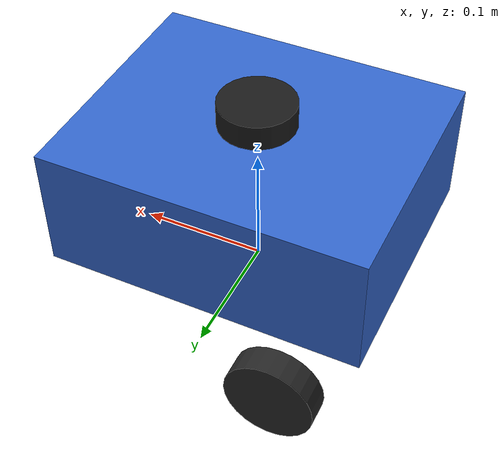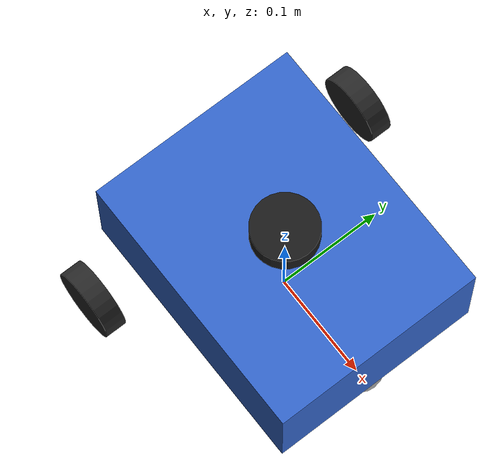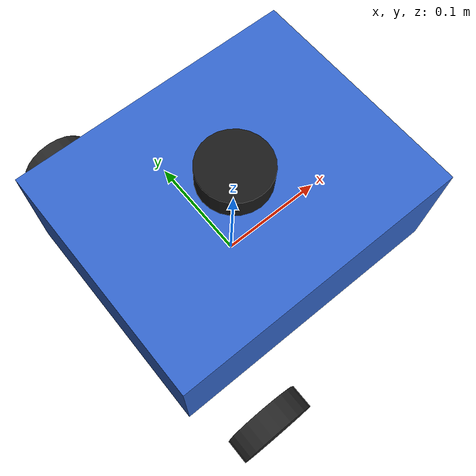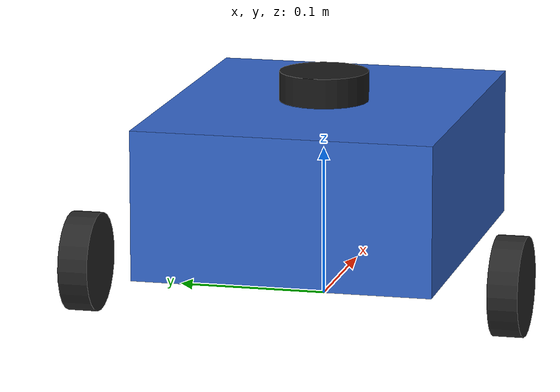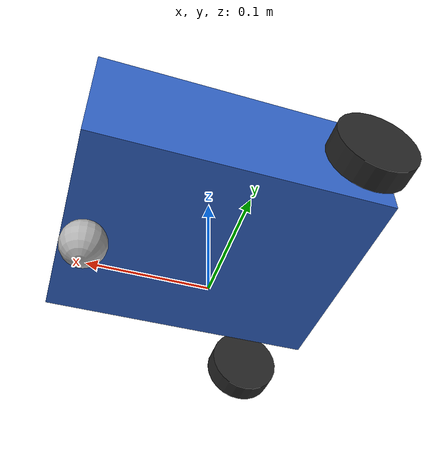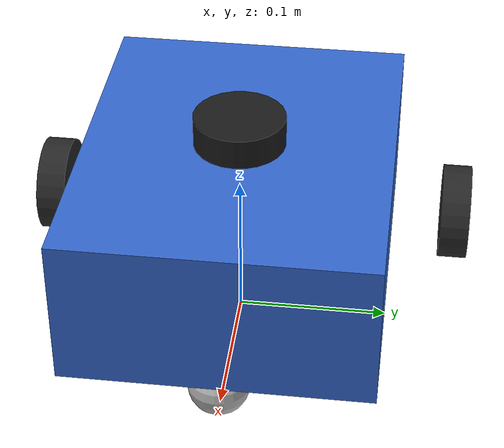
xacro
<?xml version="1.0"?>
<robot xmlns:xacro="http://www.ros.org/wiki/xacro" name="defined_mvp">

  <xacro:arg name="wheel_separation"  default="0.287"/>
  <xacro:arg name="wheel_radius"      default="0.033"/>
  <xacro:arg name="has_lidar"         default="true"/>
  <xacro:arg name="lidar_range_min"   default="0.20"/>
  <xacro:arg name="lidar_range_max"   default="3.5"/>
  <xacro:arg name="lidar_samples"     default="720"/>
  <xacro:arg name="lidar_update_rate" default="20"/>
  <xacro:arg name="has_camera"        default="false"/>
  <xacro:arg name="camera_width"      default="640"/>
  <xacro:arg name="camera_height"     default="480"/>
  <xacro:arg name="camera_fps"        default="30"/>

  <!-- ============================================================
       PROPERTIES
       ============================================================ -->
  <xacro:property name="base_length"      value="0.25"/>
  <xacro:property name="base_width"       value="0.20"/>
  <xacro:property name="base_height"      value="0.10"/>
  <xacro:property name="base_mass"        value="2.0"/>

  <xacro:property name="wheel_radius"     value="0.033"/>
  <xacro:property name="wheel_width"      value="0.020"/>
  <xacro:property name="wheel_mass"       value="0.1"/>
  <xacro:property name="wheel_separation" value="0.287"/>

  <xacro:property name="caster_radius"    value="0.020"/>
  <xacro:property name="caster_mass"      value="0.05"/>

  <!-- Derived offsets -->
  <!-- Wheel Y centre from robot centre line -->
  <xacro:property name="wheel_y"   value="${wheel_separation / 2.0}"/>
  <!-- Wheel Z relative to base_link centre; wheel tangent at base bottom -->
  <xacro:property name="wheel_z"   value="${-base_height / 2.0}"/>
  <!-- Caster at front edge of base, bottom touching ground -->
  <xacro:property name="caster_x"  value="${base_length / 2.0 - caster_radius}"/>
  <xacro:property name="caster_z"  value="${-(base_height / 2.0 + wheel_radius - caster_radius)}"/>

  <!-- ============================================================
       INERTIA HELPERS
       ============================================================ -->
  <xacro:macro name="box_inertia" params="m x y z">
    <inertial>
      <mass value="${m}"/>
      <inertia
        ixx="${m*(y*y + z*z)/12.0}" ixy="0.0" ixz="0.0"
        iyy="${m*(x*x + z*z)/12.0}" iyz="0.0"
        izz="${m*(x*x + y*y)/12.0}"/>
    </inertial>
  </xacro:macro>

  <!-- Cylinder inertia with axis along Y (after joint rotation) -->
  <xacro:macro name="cylinder_inertia" params="m r h">
    <inertial>
      <mass value="${m}"/>
      <inertia
        ixx="${m*(3.0*r*r + h*h)/12.0}" ixy="0.0" ixz="0.0"
        iyy="${m*r*r / 2.0}"            iyz="0.0"
        izz="${m*(3.0*r*r + h*h)/12.0}"/>
    </inertial>
  </xacro:macro>

  <xacro:macro name="sphere_inertia" params="m r">
    <inertial>
      <mass value="${m}"/>
      <inertia
        ixx="${2.0*m*r*r/5.0}" ixy="0.0" ixz="0.0"
        iyy="${2.0*m*r*r/5.0}" iyz="0.0"
        izz="${2.0*m*r*r/5.0}"/>
    </inertial>
  </xacro:macro>

  <!-- ============================================================
       BASE FOOTPRINT (ground-projection frame, Nav2 convention)
       ============================================================ -->
  <link name="base_footprint"/>

  <joint name="base_footprint_joint" type="fixed">
    <parent link="base_footprint"/>
    <child  link="base_link"/>
    <!-- Lift base_link centre so wheel axles are at ground level:
         base_link_z = base_height/2 + wheel_radius
         This ensures wheel bottoms touch ground and caster contacts ground. -->
    <origin xyz="0 0 ${base_height / 2.0 + wheel_radius}" rpy="0 0 0"/>
  </joint>

  <!-- ============================================================
       BASE LINK
       ============================================================ -->
  <link name="base_link">
    <visual>
      <geometry>
        <box size="${base_length} ${base_width} ${base_height}"/>
      </geometry>
      <material name="defined_blue">
        <color rgba="0.2 0.4 0.8 1.0"/>
      </material>
    </visual>
    <collision>
      <geometry>
        <box size="${base_length} ${base_width} ${base_height}"/>
      </geometry>
    </collision>
    <xacro:box_inertia m="${base_mass}"
                       x="${base_length}" y="${base_width}" z="${base_height}"/>
  </link>

  <xacro:macro name="drive_wheel" params="side y_sign">

    <link name="${side}_wheel_link">
      <visual>
        <!-- Rotate 90° about X so the cylinder axis aligns with Y (roll axis) -->
        <origin xyz="0 0 0" rpy="${pi/2} 0 0"/>
        <geometry>
          <cylinder radius="${wheel_radius}" length="${wheel_width}"/>
        </geometry>
        <material name="dark_grey">
          <color rgba="0.15 0.15 0.15 1.0"/>
        </material>
      </visual>
      <collision>
        <origin xyz="0 0 0" rpy="${pi/2} 0 0"/>
        <geometry>
          <cylinder radius="${wheel_radius}" length="${wheel_width}"/>
        </geometry>
      </collision>
      <!-- Inertia with spin axis = Y -->
      <xacro:cylinder_inertia m="${wheel_mass}" r="${wheel_radius}" h="${wheel_width}"/>
    </link>

    <joint name="${side}_wheel_joint" type="continuous">
      <parent link="base_link"/>
      <child  link="${side}_wheel_link"/>
      <origin xyz="-0.08 ${y_sign * wheel_y} ${wheel_z}" rpy="0 0 0"/>
      <axis xyz="0 1 0"/>
    </joint>

    <!-- Gz: high friction so wheels grip the floor -->
    <gazebo reference="${side}_wheel_link">
      <mu1>1.0</mu1>
      <mu2>1.0</mu2>
      <kp>1000000.0</kp>
      <kd>100.0</kd>
    </gazebo>

  </xacro:macro>

  <xacro:drive_wheel side="left"  y_sign="1"/>
  <xacro:drive_wheel side="right" y_sign="-1"/>

  <!-- ============================================================
       CASTER WHEEL (passive, zero friction)
       ============================================================ -->
  <link name="caster_link">
    <visual>
      <geometry>
        <sphere radius="${caster_radius}"/>
      </geometry>
      <material name="light_grey">
        <color rgba="0.7 0.7 0.7 1.0"/>
      </material>
    </visual>
    <collision>
      <geometry>
        <sphere radius="${caster_radius}"/>
      </geometry>
    </collision>
    <xacro:sphere_inertia m="${caster_mass}" r="${caster_radius}"/>
  </link>

  <joint name="caster_joint" type="fixed">
    <parent link="base_link"/>
    <child  link="caster_link"/>
    <origin xyz="${caster_x} 0 ${caster_z}" rpy="0 0 0"/>
  </joint>

  <gazebo reference="caster_link">
    <!-- Zero friction so caster slides freely; stiff contact to prevent bouncing -->
    <mu1>0.0</mu1>
    <mu2>0.0</mu2>
    <kp>1000000.0</kp>
    <kd>100.0</kd>
  </gazebo>

  <xacro:if value="$(arg has_lidar)">
    <xacro:property name="lidar_radius" value="0.030"/>
    <xacro:property name="lidar_height" value="0.020"/>
    <xacro:property name="lidar_mass"   value="0.1"/>

    <link name="lidar_link">
      <visual>
        <geometry>
          <cylinder radius="${lidar_radius}" length="${lidar_height}"/>
        </geometry>
        <material name="lidar_black">
          <color rgba="0.1 0.1 0.1 1.0"/>
        </material>
      </visual>
      <collision>
        <geometry>
          <cylinder radius="${lidar_radius}" length="${lidar_height}"/>
        </geometry>
      </collision>
      <xacro:cylinder_inertia m="${lidar_mass}" r="${lidar_radius}" h="${lidar_height}"/>
    </link>

    <joint name="lidar_joint" type="fixed">
      <parent link="base_link"/>
      <child  link="lidar_link"/>
      <!-- Centred on top of the base box -->
      <origin xyz="0 0 ${base_height / 2.0 + lidar_height / 2.0}" rpy="0 0 0"/>
    </joint>

    <gazebo reference="lidar_link">
      <sensor type="gpu_lidar" name="lidar_sensor">
        <pose>0 0 0 0 0 0</pose>
        <visualize>true</visualize>
        <update_rate>$(arg lidar_update_rate)</update_rate>
        <topic>/scan</topic>
        <gz_frame_id>lidar_link</gz_frame_id>
        <ray>
          <scan>
            <horizontal>
              <samples>$(arg lidar_samples)</samples>
              <resolution>1</resolution>
              <min_angle>-3.14159265359</min_angle>
              <max_angle>3.14159265359</max_angle>
            </horizontal>
          </scan>
          <range>
            <min>$(arg lidar_range_min)</min>
            <max>$(arg lidar_range_max)</max>
            <resolution>0.01</resolution>
          </range>
          <noise>
            <type>gaussian</type>
            <mean>0.0</mean>
            <stddev>0.0</stddev>
          </noise>
        </ray>
      </sensor>
    </gazebo>
  </xacro:if>

  <xacro:if value="$(arg has_camera)">
    <xacro:property name="camera_box_size" value="0.02"/>
    <xacro:property name="camera_mass"     value="0.05"/>

    <link name="camera_link">
      <visual>
        <geometry>
          <box size="${camera_box_size} ${camera_box_size * 2} ${camera_box_size}"/>
        </geometry>
        <material name="camera_grey">
          <color rgba="0.3 0.3 0.3 1.0"/>
        </material>
      </visual>
      <collision>
        <geometry>
          <box size="${camera_box_size} ${camera_box_size * 2} ${camera_box_size}"/>
        </geometry>
      </collision>
      <xacro:box_inertia m="${camera_mass}"
                         x="${camera_box_size}" y="${camera_box_size * 2}" z="${camera_box_size}"/>
    </link>

    <!-- Camera optical frame: Z forward, X right, Y down (ROS convention) -->
    <link name="camera_optical_link"/>

    <joint name="camera_joint" type="fixed">
      <parent link="base_link"/>
      <child  link="camera_link"/>
      <!-- Front-centre of base, slightly above centre -->
      <origin xyz="${base_length / 2.0} 0 ${base_height / 4.0}" rpy="0 0 0"/>
    </joint>

    <joint name="camera_optical_joint" type="fixed">
      <parent link="camera_link"/>
      <child  link="camera_optical_link"/>
      <!-- Rotate from URDF (X-forward) to optical (Z-forward) convention -->
      <origin xyz="0 0 0" rpy="${-pi/2} 0 ${-pi/2}"/>
    </joint>

    <gazebo reference="camera_link">
      <sensor type="camera" name="camera_sensor">
        <pose>0 0 0 0 0 0</pose>
        <visualize>false</visualize>
        <update_rate>$(arg camera_fps)</update_rate>
        <topic>/camera/image_raw</topic>
        <gz_frame_id>camera_optical_link</gz_frame_id>
        <camera>
          <horizontal_fov>1.3962634</horizontal_fov>
          <image>
            <width>$(arg camera_width)</width>
            <height>$(arg camera_height)</height>
            <format>R8G8B8</format>
          </image>
          <clip>
            <near>0.02</near>
            <far>100</far>
          </clip>
        </camera>
      </sensor>
    </gazebo>
  </xacro:if>

  <gazebo>
    <plugin filename="gz-sim-diff-drive-system" name="gz::sim::systems::DiffDrive">
      <left_joint>left_wheel_joint</left_joint>
      <right_joint>right_wheel_joint</right_joint>

      <wheel_separation>${wheel_separation}</wheel_separation>
      <wheel_radius>${wheel_radius}</wheel_radius>

      <max_linear_acceleration>1.0</max_linear_acceleration>

      <topic>/cmd_vel</topic>
      <odom_topic>/odom</odom_topic>
      <frame_id>odom</frame_id>
      <child_frame_id>base_footprint</child_frame_id>
      <odom_publish_frequency>50</odom_publish_frequency>
      <tf_topic>/odom_tf</tf_topic>
    </plugin>
  </gazebo>

  <gazebo>
    <plugin filename="gz-sim-joint-state-publisher-system"
            name="gz::sim::systems::JointStatePublisher">
      <joint_name>left_wheel_joint</joint_name>
      <joint_name>right_wheel_joint</joint_name>
      <update_rate>50</update_rate>
      <topic>/joint_states</topic>
    </plugin>
  </gazebo>

</robot>
